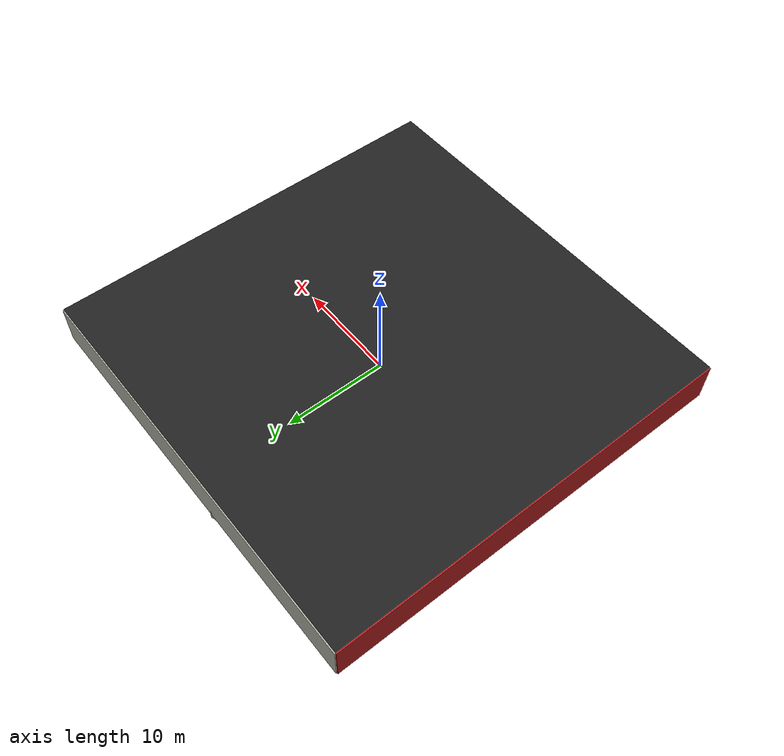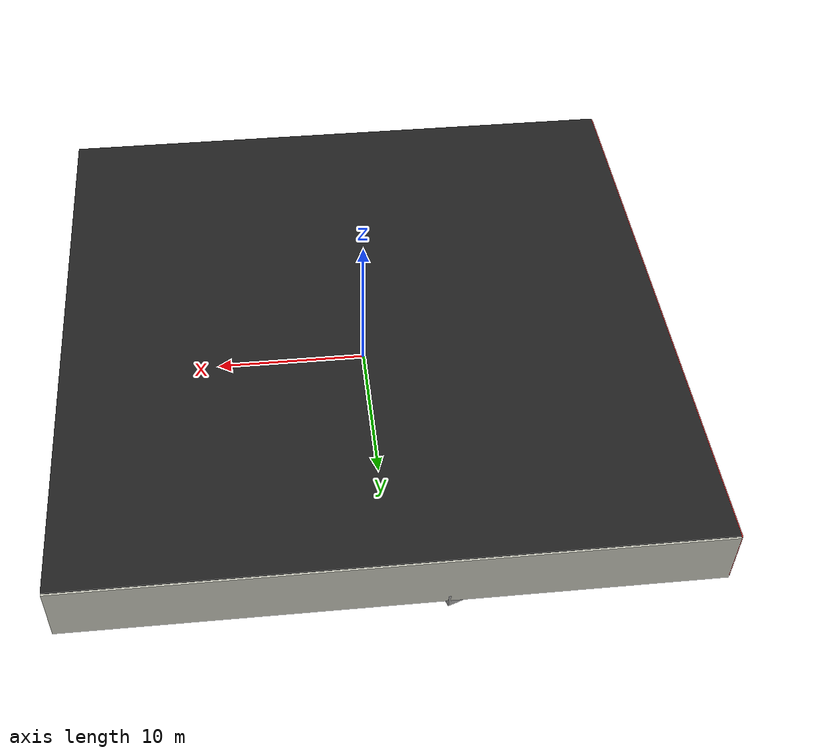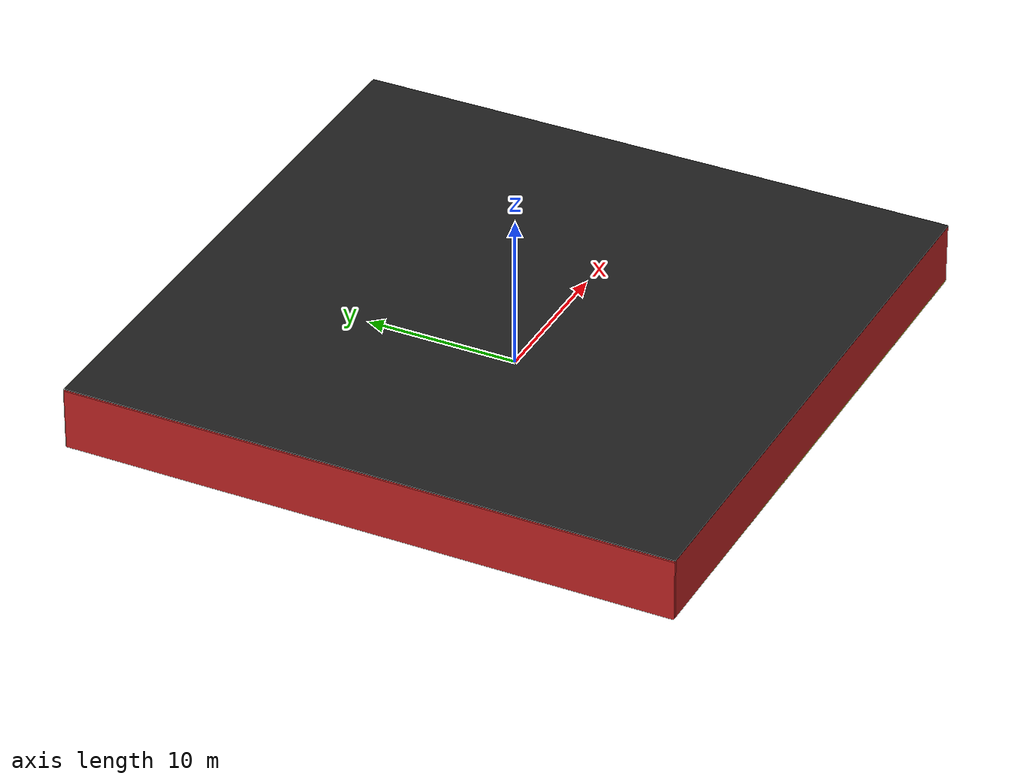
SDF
<sdf version="1.4">
 <world name="default">
  <physics type="ode">
   <max_step_size>0.001</max_step_size>
   <real_time_factor>1</real_time_factor>
   <real_time_update_rate>1000</real_time_update_rate>
   <gravity>0 0 -9.8</gravity>
  </physics>
  <scene><ambient>0.4 0.4 0.4 1</ambient><background>0.7 0.7 0.7 1</background><shadows>1</shadows></scene>
  <model name="Surrounding">
   <static>1</static>
   <link name="Ceiling">
    <collision name="Ceiling_Collision"><geometry><box><size>40 40 0.1</size></box></geometry></collision>
    <visual name="Ceiling_Visual">
     <geometry><box><size>40 40 0.1</size></box></geometry>
     <material>
      <script><uri>file://media/materials/scripts/gazebo.material</uri><name>Gazebo/FlatBlack</name></script>
     </material>
    </visual>
    <pose>0 0 4.05 0 0 0</pose>
   </link>
   <link name="Wall_South">
    <collision name="Wall_South_Collision">
     <geometry><box><size>40 0 4</size></box></geometry>
     <pose>0 0 2 0 -0 0</pose>
    </collision>
    <visual name="Wall_South_Visual">
     <pose>0 0 2 0 -0 0</pose>
     <geometry><box><size>40 0 4</size></box></geometry>
     <material>
      <script><uri>file://media/materials/scripts/gazebo.material</uri><name>Gazebo/Red</name></script>
     </material>
    </visual>
    <velocity_decay><linear>0</linear><angular>0</angular></velocity_decay>
    <pose>0 -20 0 0 -0 0</pose>
   </link>
   <link name="Wall_East">
    <collision name="Wall_21_Collision">
     <geometry><box><size>40 0 4</size></box></geometry>
     <pose>0 0 2 0 -0 0</pose>
    </collision>
    <visual name="Wall_21_Visual">
     <pose>0 0 2 0 -0 0</pose>
     <geometry><box><size>40 0 4</size></box></geometry>
     <material>
      <script><uri>file://media/materials/scripts/gazebo.material</uri><name>Gazebo/WoodFloor</name></script>
     </material>
    </visual>
    <velocity_decay><linear>0</linear><angular>0</angular></velocity_decay>
    <pose>20 0 0 0 -0 1.5708</pose>
   </link>
   <link name="Wall_North">
    <collision name="Wall_22_Collision">
     <geometry><box><size>40 0.2 4</size></box></geometry>
     <pose>0 0 2 0 -0 0</pose>
    </collision>
    <visual name="Wall_22_Visual">
     <pose>0 0 2 0 -0 0</pose>
     <geometry><box><size>40 0.2 4</size></box></geometry>
     <material>
      <script><uri>file://media/materials/scripts/gazebo.material</uri><name>Gazebo/PaintedWall</name></script>
     </material>
    </visual>
    <velocity_decay><linear>0</linear><angular>0</angular></velocity_decay>
    <pose>0 20 0 0 -0 0</pose>
   </link>
   <link name="Wall_West">
    <collision name="Wall_23_Collision">
     <geometry><box><size>40 0.2 4</size></box></geometry>
     <pose>0 0 2 0 -0 0</pose>
    </collision>
    <visual name="Wall_23_Visual">
     <pose>0 0 2 0 -0 0</pose>
     <geometry><box><size>40 0.2 4</size></box></geometry>
     <material>
      <script><uri>file://media/materials/scripts/gazebo.material</uri><name>Gazebo/RedBright</name></script>
     </material>
    </visual>
    <velocity_decay><linear>0</linear><angular>0</angular></velocity_decay>
    <pose>-20 0 0 0 0 -1.5708</pose>
   </link>
   <link name="Ground_link">
    <collision name="collision">
     <pose>0 0 .05 0 -0 0</pose>
     <geometry><box><size>40 40 0.1</size></box></geometry>
    </collision>
    <visual name="visual">
     <pose>0 0 .05 0 -0 0</pose>
     <geometry><box><size>40 40 0.1</size></box></geometry>
     <material>
      <script><uri>file://media/materials/scripts/gazebo.material</uri><name>Gazebo/ZincYellow</name></script>
     </material>
    </visual>
   </link>
   <static>1</static>
  </model>
  <spherical_coordinates>
   <surface_model>EARTH_WGS84</surface_model>
   <latitude_deg>0</latitude_deg>
   <longitude_deg>0</longitude_deg>
   <elevation>0</elevation>
   <heading_deg>0</heading_deg>
  </spherical_coordinates>
  <light name="lightball_0" type="diffuse">
   <diffuse>0.8 0.8 0.8 1</diffuse>
   <specular>0.2 0.2 0.2 1</specular>
   <attenuation>
    <range>100</range>
    <constant>0.7</constant>
    <linear>0.01</linear>
    <quadratic>0.001</quadratic>
   </attenuation>
   <direction>-0.5 0.1 -0.9</direction>
   <pose>-18.4424890227 -1.19916848082 1.94931801042 0 0 0</pose>
  </light>
  <light name="lightball_1" type="diffuse">
   <diffuse>0.8 0.8 0.8 1</diffuse>
   <specular>0.2 0.2 0.2 1</specular>
   <attenuation>
    <range>100</range>
    <constant>0.7</constant>
    <linear>0.01</linear>
    <quadratic>0.001</quadratic>
   </attenuation>
   <direction>-0.5 0.1 -0.9</direction>
   <pose>16.0648037693 -4.74487460704 2.76185613566 0 0 0</pose>
  </light>
  <light name="lightball_2" type="diffuse">
   <diffuse>0.8 0.8 0.8 1</diffuse>
   <specular>0.2 0.2 0.2 1</specular>
   <attenuation>
    <range>100</range>
    <constant>0.7</constant>
    <linear>0.01</linear>
    <quadratic>0.001</quadratic>
   </attenuation>
   <direction>-0.5 0.1 -0.9</direction>
   <pose>-5.20541734903 -16.8987302451 2.41973310503 0 0 0</pose>
  </light>
  <light name="lightball_3" type="diffuse">
   <diffuse>0.8 0.8 0.8 1</diffuse>
   <specular>0.2 0.2 0.2 1</specular>
   <attenuation>
    <range>100</range>
    <constant>0.7</constant>
    <linear>0.01</linear>
    <quadratic>0.001</quadratic>
   </attenuation>
   <direction>-0.5 0.1 -0.9</direction>
   <pose>-4.2281090549 -12.0896336476 1.02286714927 0 0 0</pose>
  </light>
  <light name="lightball_4" type="diffuse">
   <diffuse>0.8 0.8 0.8 1</diffuse>
   <specular>0.2 0.2 0.2 1</specular>
   <attenuation>
    <range>100</range>
    <constant>0.7</constant>
    <linear>0.01</linear>
    <quadratic>0.001</quadratic>
   </attenuation>
   <direction>-0.5 0.1 -0.9</direction>
   <pose>0.479278833182 13.7583456689 3.45937601279 0 0 0</pose>
  </light>
  <include><uri>model://cabinet</uri><pose>-13.9423879229 -16.4463275686 0 0 0 2.05287805818</pose></include>
  <include><uri>model://cabinet</uri><pose>-14.3076148581 -8.08955625571 0 0 0 2.46291314201</pose></include>
  <include>
   <uri>model://robocup_3Dsim_goal</uri>
   <pose>-14.1834182841 9.59551985135 0 0 0 3.04604189485</pose>
  </include>
  <include>
   <uri>model://construction_cone</uri>
   <pose>-12.6179550794 3.8907100297 0 0 0 3.09720116464</pose>
  </include>
  <include>
   <uri>model://construction_cone</uri>
   <pose>-10.3898963961 7.23291988981 0 0 0 1.95956989169</pose>
  </include>
  <include>
   <uri>model://textured_shapes</uri>
   <pose>-7.53058694818 3.50701007665 0 0 0 0.579114923443</pose>
  </include>
  <include>
   <uri>model://textured_shapes</uri>
   <pose>-4.54500625068 -8.77570049913 0 0 0 2.40477960979</pose>
  </include>
  <include>
   <uri>model://textured_shapes</uri>
   <pose>-5.79743510298 -2.10959362145 0 0 0 0.107470533781</pose>
  </include>
  <include><uri>model://table</uri><pose>-4.92756454131 2.850233822 0 0 0 2.98140399773</pose></include>
  <include><uri>model://cabinet</uri><pose>-5.31746992032 12.9524180009 0 0 0 2.77698781169</pose></include>
  <include><uri>model://cabinet</uri><pose>-6.50555612478 15.9885074884 0 0 0 0.985233916769</pose></include>
  <include>
   <uri>model://textured_shapes</uri>
   <pose>-4.82474715525 19.0125269849 0 0 0 1.90898025046</pose>
  </include>
  <include>
   <uri>model://textured_shapes</uri>
   <pose>-1.98383753867 -15.2227041337 0 0 0 2.47031739526</pose>
  </include>
  <include>
   <uri>model://construction_cone</uri>
   <pose>-2.76784071067 2.7673260001 0 0 0 2.05622352765</pose>
  </include>
  <include><uri>model://table</uri><pose>-1.66884625777 16.074043779 0 0 0 1.70505164219</pose></include>
  <include>
   <uri>model://construction_cone</uri>
   <pose>0.743219656497 -8.73880022239 0 0 0 0.0498815436988</pose>
  </include>
  <include><uri>model://table</uri><pose>1.02313775173 12.826772985 0 0 0 2.7986505946</pose></include>
  <include>
   <uri>model://construction_cone</uri>
   <pose>4.08594041033 -8.33655769095 0 0 0 0.509798415146</pose>
  </include>
  <include>
   <uri>model://construction_cone</uri>
   <pose>2.67123581752 6.29997098921 0 0 0 1.84406534916</pose>
  </include>
  <include><uri>model://table</uri><pose>3.10757480192 11.6068970496 0 0 0 1.48615286524</pose></include>
  <include><uri>model://cabinet</uri><pose>7.39145492446 -13.6058997428 0 0 0 1.61514769846</pose></include>
  <include>
   <uri>model://construction_cone</uri>
   <pose>6.53518867644 17.6908256823 0 0 0 2.23518417847</pose>
  </include>
  <include><uri>model://cabinet</uri><pose>10.6597242624 -13.8576246747 0 0 0 1.151629326</pose></include>
  <include>
   <uri>model://textured_shapes</uri>
   <pose>9.61366686991 -1.94277202929 0 0 0 0.883820819588</pose>
  </include>
  <include>
   <uri>model://construction_cone</uri>
   <pose>9.5419242544 7.68017611485 0 0 0 2.09146428648</pose>
  </include>
  <include><uri>model://cabinet</uri><pose>12.8947571379 7.10696671672 0 0 0 2.19108659679</pose></include>
  <include>
   <uri>model://textured_shapes</uri>
   <pose>11.8464434121 10.0875640787 0 0 0 1.38897670198</pose>
  </include>
  <include>
   <uri>model://robocup_3Dsim_goal</uri>
   <pose>14.4234340119 4.65774823019 0 0 0 2.72289541355</pose>
  </include>
  <include><uri>model://table</uri><pose>15.2612870071 13.41936793 0 0 0 0.964300314001</pose></include>
  <include>
   <uri>model://construction_cone</uri>
   <pose>18.5579265745 -17.311376909 0 0 0 0.925490455033</pose>
  </include>
  <include>
   <uri>model://construction_cone</uri>
   <pose>17.6292493483 16.2975863869 0 0 0 1.08119190795</pose>
  </include>
  <include>
   <uri>model://robocup_3Dsim_goal</uri>
   <pose>19.2453549247 18.7581335647 0 0 0 1.95702571676</pose>
  </include>
 </world>
</sdf>

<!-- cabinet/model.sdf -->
<sdf version="1.5">
  <model name="cabinet">
    <static>true</static>
    <link name="cabinet_bottom_plate">
      <inertial>
        <pose>0 0 -1 0 0 0</pose>
        <inertia>
          <ixx>2.050000</ixx>
          <ixy>0</ixy>
          <ixz>0</ixz>
          <iyy>2.050000</iyy>
          <iyz>0</iyz>
          <izz>2.050000</izz>
        </inertia>
        <mass>25.000000</mass>
      </inertial>
      <collision name="cabinet_bottom_plate_geom">
        <pose>0 0 0.010000 0 0 0</pose>
        <geometry>
          <box>
            <size>0.450000 0.450000 0.020000</size>
          </box>
        </geometry>
      </collision>
      <visual name="cabinet_bottom_plate_geom_visual">
        <pose>0 0 0.010000 0 0 0</pose>
        <geometry>
          <box>
            <size>0.450000 0.450000 0.020000</size>
          </box>
        </geometry>
        <material>
          <script>
            <uri>model://media/materials/scripts/gazebo.material</uri>
            <name>Gazebo/Wood</name>
          </script>
        </material>
      </visual>
      <collision name="cabinet_bottom_plate_geom_cabinet_back_plate">
        <pose>0.235000 0 0.510000 0 0 0</pose>
        <geometry>
          <box>
            <size>0.020000 0.450000 1.020000</size>
          </box>
        </geometry>
      </collision>
      <visual name="cabinet_bottom_plate_geom_cabinet_back_plate_visual">
        <pose>0.235000 0 0.510000 0 0 0</pose>
        <geometry>
          <box>
            <size>0.020000 0.450000 1.020000</size>
          </box>
        </geometry>
        <material>
          <script>
            <uri>model://media/materials/scripts/gazebo.material</uri>
            <name>Gazebo/Wood</name>
          </script>
        </material>
      </visual>
      <collision name="cabinet_bottom_plate_geom_cabinet_left_plate">
        <pose>0 0.235000 0.510000 0 0 0</pose>
        <geometry>
          <box>
            <size>0.450000 0.020000 1.020000</size>
          </box>
        </geometry>
      </collision>
      <visual name="cabinet_bottom_plate_geom_cabinet_left_plate_visual">
        <pose>0 0.235000 0.510000 0 0 0</pose>
        <geometry>
          <box>
            <size>0.450000 0.020000 1.020000</size>
          </box>
        </geometry>
        <material>
          <script>
            <uri>model://media/materials/scripts/gazebo.material</uri>
            <name>Gazebo/Wood</name>
          </script>
        </material>
      </visual>
      <collision name="cabinet_bottom_plate_geom_cabinet_middle_plate">
        <pose>0 0 0.510000 0 0 0</pose>
        <geometry>
          <box>
            <size>0.450000 0.450000 0.020000</size>
          </box>
        </geometry>
      </collision>
      <visual name="cabinet_bottom_plate_geom_cabinet_middle_plate_visual">
        <pose>0 0 0.510000 0 0 0</pose>
        <geometry>
          <box>
            <size>0.450000 0.450000 0.020000</size>
          </box>
        </geometry>
        <material>
          <script>
            <uri>model://media/materials/scripts/gazebo.material</uri>
            <name>Gazebo/Wood</name>
          </script>
        </material>
      </visual>
      <collision name="cabinet_bottom_plate_geom_cabinet_right_plate">
        <pose>0 -0.235000 0.510000 0 0 0</pose>
        <geometry>
          <box>
            <size>0.450000 0.020000 1.020000</size>
          </box>
        </geometry>
      </collision>
      <visual name="cabinet_bottom_plate_geom_cabinet_right_plate_visual">
        <pose>0 -0.235000 0.510000 0 0 0</pose>
        <geometry>
          <box>
            <size>0.450000 0.020000 1.020000</size>
          </box>
        </geometry>
        <material>
          <script>
            <uri>model://media/materials/scripts/gazebo.material</uri>
            <name>Gazebo/Wood</name>
          </script>
        </material>
      </visual>
      <collision name="cabinet_bottom_plate_geom_cabinet_top_plate">
        <pose>0 0 1.010000 0 0 0</pose>
        <geometry>
          <box>
            <size>0.450000 0.450000 0.020000</size>
          </box>
        </geometry>
      </collision>
      <visual name="cabinet_bottom_plate_geom_cabinet_top_plate_visual">
        <pose>0 0 1.010000 0 0 0</pose>
        <geometry>
          <box>
            <size>0.450000 0.450000 0.020000</size>
          </box>
        </geometry>
        <material>
          <script>
            <uri>model://media/materials/scripts/gazebo.material</uri>
            <name>Gazebo/Wood</name>
          </script>
        </material>
      </visual>
    </link>
  </model>
</sdf>

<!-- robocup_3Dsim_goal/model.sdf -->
<sdf version="1.5">
  <model name="robocup_3d_goal">
    <static>true</static>
    <link name="left_post">
      <pose>0 1.05 0.45 0 0 0</pose>
      <collision name="collision">
        <geometry>
          <cylinder>
            <radius>0.05</radius>
            <length>0.9</length>
          </cylinder>
        </geometry>
      </collision>
      <visual name="visual">
        <geometry>
          <cylinder>
            <radius>0.05</radius>
            <length>0.9</length>
          </cylinder>
        </geometry>
        <material>
          <script>
            <uri>file://media/materials/scripts/gazebo.material</uri>
            <name>Gazebo/ZincYellow</name>
          </script>
        </material>
      </visual>
    </link>
    <link name="left_support_horiz_lower">
      <pose>0.30 1.05 0.01 0 0 0</pose>
      <collision name="collision">
        <geometry>
          <box>
            <size>0.50 0.02 0.02</size>
          </box>
        </geometry>
      </collision>
      <visual name="visual">
        <geometry>
          <box>
            <size>0.50 0.02 0.02</size>
          </box>
        </geometry>
        <material>
          <script>
            <uri>file://media/materials/scripts/gazebo.material</uri>
            <name>Gazebo/White</name>
          </script>
        </material>
      </visual>
    </link>
    <link name="left_support_horiz_upper">
      <pose>0.30 1.05 0.79 0 0 0</pose>
      <collision name="collision">
        <geometry>
          <box>
            <size>0.50 0.02 0.02</size>
          </box>
        </geometry>
      </collision>
      <visual name="visual">
        <geometry>
          <box>
            <size>0.50 0.02 0.02</size>
          </box>
        </geometry>
        <material>
          <script>
            <uri>file://media/materials/scripts/gazebo.material</uri>
            <name>Gazebo/White</name>
          </script>
        </material>
      </visual>
    </link>
    <link name="left_support_vertical">
      <pose>0.56 1.05 0.4 0 1.5708 0</pose>
      <collision name="collision">
        <geometry>
          <box>
            <size>0.80 0.02 0.02</size>
          </box>
        </geometry>
      </collision>
      <visual name="visual">
        <geometry>
          <box>
            <size>0.80 0.02 0.02</size>
          </box>
        </geometry>
        <material>
          <script>
            <uri>file://media/materials/scripts/gazebo.material</uri>
            <name>Gazebo/White</name>
          </script>
        </material>
      </visual>
    </link>
    <link name="right_support_horiz_lower">
      <pose>0.30 -1.05 0.01 0 0 0</pose>
      <collision name="collision">
        <geometry>
          <box>
            <size>0.50 0.02 0.02</size>
          </box>
        </geometry>
      </collision>
      <visual name="visual">
        <geometry>
          <box>
            <size>0.50 0.02 0.02</size>
          </box>
        </geometry>
        <material>
          <script>
            <uri>file://media/materials/scripts/gazebo.material</uri>
            <name>Gazebo/White</name>
          </script>
        </material>
      </visual>
    </link>
    <link name="right_support_horiz_upper">
      <pose>0.30 -1.05 0.79 0 0 0</pose>
      <collision name="collision">
        <geometry>
          <box>
            <size>0.50 0.02 0.02</size>
          </box>
        </geometry>
      </collision>
      <visual name="visual">
        <geometry>
          <box>
            <size>0.50 0.02 0.02</size>
          </box>
        </geometry>
        <material>
          <script>
            <uri>file://media/materials/scripts/gazebo.material</uri>
            <name>Gazebo/White</name>
          </script>
        </material>
      </visual>
    </link>
    <link name="right_support_vertical">
      <pose>0.56 -1.05 0.4 0 1.5708 0</pose>
      <collision name="collision">
        <geometry>
          <box>
            <size>0.80 0.02 0.02</size>
          </box>
        </geometry>
      </collision>
      <visual name="visual">
        <geometry>
          <box>
            <size>0.80 0.02 0.02</size>
          </box>
        </geometry>
        <material>
          <script>
            <uri>file://media/materials/scripts/gazebo.material</uri>
            <name>Gazebo/White</name>
          </script>
        </material>
      </visual>
    </link>
    <link name="center_support_horiz_lower">
      <pose>0.56 0 0.01 0 1.5708 0</pose>
      <collision name="collision">
        <geometry>
          <box>
            <size>0.02 2.08 0.02</size>
          </box>
        </geometry>
      </collision>
      <visual name="visual">
        <geometry>
          <box>
            <size>0.02 2.08 0.02</size>
          </box>
        </geometry>
        <material>
          <script>
            <uri>file://media/materials/scripts/gazebo.material</uri>
            <name>Gazebo/White</name>
          </script>
        </material>
      </visual>
    </link>
    <link name="center_support_horiz_upper">
      <pose>0.56 0 0.79 0 1.5708 0</pose>
      <collision name="collision">
        <geometry>
          <box>
            <size>0.02 2.08 0.02</size>
          </box>
        </geometry>
      </collision>
      <visual name="visual">
        <geometry>
          <box>
            <size>0.02 2.08 0.02</size>
          </box>
        </geometry>
        <material>
          <script>
            <uri>file://media/materials/scripts/gazebo.material</uri>
            <name>Gazebo/White</name>
          </script>
        </material>
      </visual>
    </link>
    <link name="right_post">
      <pose>0 -1.05 0.45 0 0 0</pose>
      <collision name="collision">
        <geometry>
          <cylinder>
            <radius>0.05</radius>
            <length>0.9</length>
          </cylinder>
        </geometry>
      </collision>
      <visual name="visual">
        <geometry>
          <cylinder>
            <radius>0.05</radius>
            <length>0.9</length>
          </cylinder>
        </geometry>
        <material>
          <script>
            <uri>file://media/materials/scripts/gazebo.material</uri>
            <name>Gazebo/ZincYellow</name>
          </script>
        </material>
      </visual>
    </link>
    <link name="crossbar">
      <pose>0 0 0.85 1.57 1.57 0</pose>
      <collision name="collision">
        <geometry>
          <cylinder>
            <radius>0.05</radius>
            <length>2.0</length>
          </cylinder>
        </geometry>
      </collision>
      <visual name="visual">
        <geometry>
          <cylinder>
            <radius>0.05</radius>
            <length>2.0</length>
          </cylinder>
        </geometry>
        <material>
          <script>
            <uri>file://media/materials/scripts/gazebo.material</uri>
            <name>Gazebo/ZincYellow</name>
          </script>
        </material>
      </visual>
    </link>
    <link name="center_net">
      <pose>0.56 0 0.40 0 0 0</pose>
      <collision name="collision">
        <geometry>
          <box>
            <size>0.01 2.1 0.80</size>
          </box>
        </geometry>
      </collision>
      <visual name="visual">
        <geometry>
          <box>
            <size>0.01 2.1 0.80</size>
          </box>
        </geometry>
        <material>
          <script>
            <uri>model://../model_source/models/robocup09_spl_field/materials/scripts/</uri>
            <uri>model://../model_source/models/robocup09_spl_field/materials/textures/</uri>
            <name>RoboCup/Net</name>
          </script>
        </material>
      </visual>
    </link>
    <link name="left_net">
      <pose>0.30 1.05 0.40 0 0 0</pose>
      <collision name="collision">
        <geometry>
          <box>
            <size>0.50 0.01 0.76</size>
          </box>
        </geometry>
      </collision>
      <visual name="visual">
        <geometry>
          <box>
            <size>0.50 0.01 0.76</size>
          </box>
        </geometry>
        <material>
          <script>
            <uri>model://../model_source/models/robocup09_spl_field/materials/scripts/</uri>
            <uri>model://../model_source/models/robocup09_spl_field/materials/textures/</uri>
            <name>RoboCup/Net</name>
          </script>
        </material>
      </visual>
    </link>
    <link name="right_net">
      <pose>0.30 -1.05 0.40 0 0 0</pose>
      <collision name="collision">
        <geometry>
          <box>
            <size>0.50 0.01 0.76</size>
          </box>
        </geometry>
      </collision>
      <visual name="visual">
        <geometry>
          <box>
            <size>0.50 0.01 0.76</size>
          </box>
        </geometry>
        <material>
          <script>
            <uri>model://../model_source/models/robocup09_spl_field/materials/scripts/</uri>
            <uri>model://../model_source/models/robocup09_spl_field/materials/textures/</uri>
            <name>RoboCup/Net</name>
          </script>
        </material>
      </visual>
    </link>
  </model>
</sdf>

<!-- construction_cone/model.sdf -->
<sdf version="1.5">
  <model name="Construction Cone">
    <link name="link">
      <collision name="collision">
        <geometry>
          <mesh>
            <scale>10 10 10</scale>
            <uri>file://isr-testbed/construction_cone/meshes/construction_cone.dae</uri>
          </mesh>
        </geometry>
      </collision>
      <visual name="visual">
        <geometry>
          <mesh>
            <scale>10 10 10</scale>
            <uri>file://isr-testbed/construction_cone/meshes/construction_cone.dae</uri>
          </mesh>
        </geometry>
      </visual>
    </link>
  </model>
</sdf>

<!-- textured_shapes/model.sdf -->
<sdf version="1.6">
  <model name="textured_shapes">
    <pose>0 0 0.5 0 0 0</pose>
    <link name="box">
      <pose>0 -1.5 0 0 0 0</pose>
      <collision name="collision">
        <geometry>
          <box>
            <size>1 1 1</size>
          </box>
        </geometry>
      </collision>
      <visual name="visual">
        <geometry>
          <box>
            <size>1 1 1</size>
          </box>
        </geometry>
        <material>
          <script>
            <uri>model://../model_source/models/textured_shapes/materials/scripts</uri>
            <uri>model://../model_source/models/textured_shapes/materials/textures</uri>
            <name>TexturedShape/Squares</name>
          </script>
        </material>
      </visual>
    </link>
    <link name="sphere">
      <collision name="collision">
        <geometry>
          <sphere>
            <radius>0.5</radius>
          </sphere>
        </geometry>
      </collision>
      <visual name="visual">
        <geometry>
          <sphere>
            <radius>0.5</radius>
          </sphere>
        </geometry>
        <material>
          <script>
            <uri>model://../model_source/models/textured_shapes/materials/scripts</uri>
            <uri>model://../model_source/models/textured_shapes/materials/textures</uri>
            <name>TexturedShape/Squares</name>
          </script>
        </material>
      </visual>
    </link>
    <link name="cylinder">
      <pose>0 1.5 0 0 0 0</pose>
      <collision name="collision">
        <geometry>
          <cylinder>
            <radius>0.5</radius>
            <length>1</length>
          </cylinder>
        </geometry>
      </collision>
      <visual name="visual">
        <geometry>
          <cylinder>
            <radius>0.5</radius>
            <length>1</length>
          </cylinder>
        </geometry>
        <material>
          <script>
            <uri>model://../model_source/models/textured_shapes/materials/scripts</uri>
            <uri>model://../model_source/models/textured_shapes/materials/textures</uri>
            <name>TexturedShape/Squares</name>
          </script>
        </material>
      </visual>
    </link>
  </model>
</sdf>

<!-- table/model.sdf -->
<sdf version="1.5">
  <model name="table">
    <static>true</static>
    <link name="link">
      <collision name="surface">
        <pose>0 0 1.0 0 0 0</pose>
        <geometry>
          <box>
            <size>1.5 0.8 0.03</size>
          </box>
        </geometry>
        <surface>
          <friction>
            <ode>
              <mu>0.6</mu>
              <mu2>0.6</mu2>
            </ode>
          </friction>
        </surface>
      </collision>
      <visual name="visual1">
        <pose>0 0 1.0 0 0 0</pose>
        <geometry>
          <box>
            <size>1.5 0.8 0.03</size>
          </box>
        </geometry>
        <material>
          <script>
            <uri>model://media/materials/scripts/gazebo.material</uri>
            <name>Gazebo/Wood</name>
          </script>
        </material>
      </visual>
      <collision name="front_left_leg">
        <pose>0.68 0.38 0.5 0 0 0</pose>
        <geometry>
          <cylinder>
            <radius>0.02</radius>
            <length>1.0</length>
          </cylinder>
        </geometry>
      </collision>
      <visual name="front_left_leg">
        <pose>0.68 0.38 0.5 0 0 0</pose>
        <geometry>
          <cylinder>
            <radius>0.02</radius>
            <length>1.0</length>
          </cylinder>
        </geometry>
        <material>
          <script>
            <uri>model://media/materials/scripts/gazebo.material</uri>
            <name>Gazebo/Grey</name>
          </script>
        </material>
      </visual>
      <collision name="front_right_leg">
        <pose>0.68 -0.38 0.5 0 0 0</pose>
        <geometry>
          <cylinder>
            <radius>0.02</radius>
            <length>1.0</length>
          </cylinder>
        </geometry>
      </collision>
      <visual name="front_right_leg">
        <pose>0.68 -0.38 0.5 0 0 0</pose>
        <geometry>
          <cylinder>
            <radius>0.02</radius>
            <length>1.0</length>
          </cylinder>
        </geometry>
        <material>
          <script>
            <uri>model://media/materials/scripts/gazebo.material</uri>
            <name>Gazebo/Grey</name>
          </script>
        </material>
      </visual>
      <collision name="back_right_leg">
        <pose>-0.68 -0.38 0.5 0 0 0</pose>
        <geometry>
          <cylinder>
            <radius>0.02</radius>
            <length>1.0</length>
          </cylinder>
        </geometry>
      </collision>
      <visual name="back_right_leg">
        <pose>-0.68 -0.38 0.5 0 0 0</pose>
        <geometry>
          <cylinder>
            <radius>0.02</radius>
            <length>1.0</length>
          </cylinder>
        </geometry>
        <material>
          <script>
            <uri>model://media/materials/scripts/gazebo.material</uri>
            <name>Gazebo/Grey</name>
          </script>
        </material>
      </visual>
      <collision name="back_left_leg">
        <pose>-0.68 0.38 0.5 0 0 0</pose>
        <geometry>
          <cylinder>
            <radius>0.02</radius>
            <length>1.0</length>
          </cylinder>
        </geometry>
      </collision>
      <visual name="back_left_leg">
        <pose>-0.68 0.38 0.5 0 0 0</pose>
        <geometry>
          <cylinder>
            <radius>0.02</radius>
            <length>1.0</length>
          </cylinder>
        </geometry>
        <material>
          <script>
            <uri>model://media/materials/scripts/gazebo.material</uri>
            <name>Gazebo/Grey</name>
          </script>
        </material>
      </visual>
    </link>
  </model>
</sdf>
